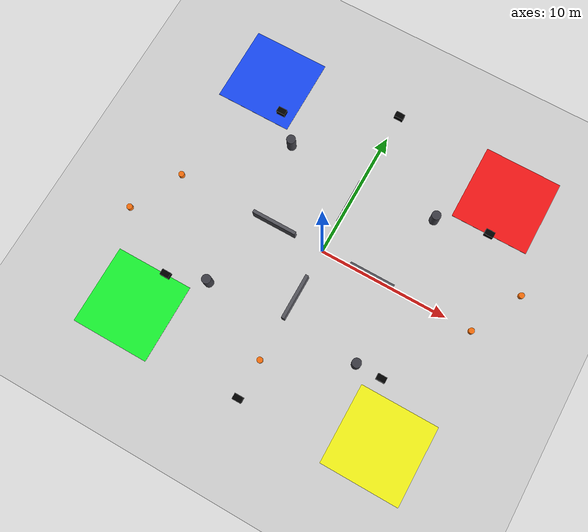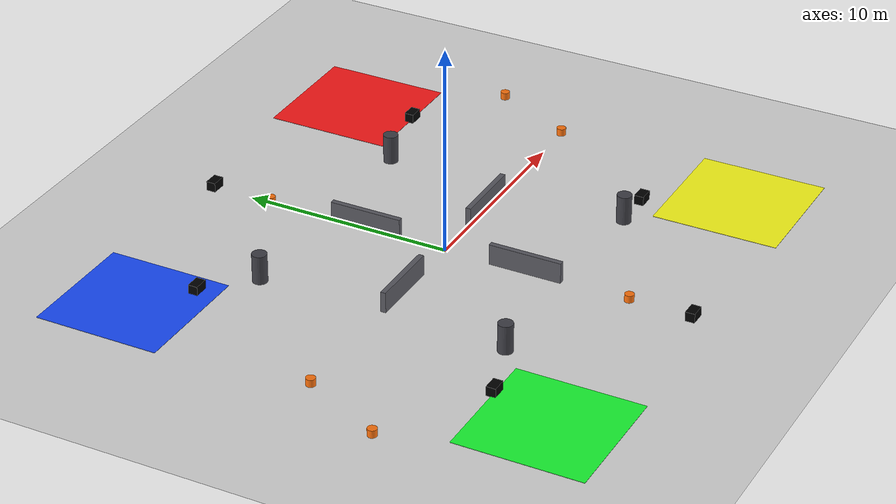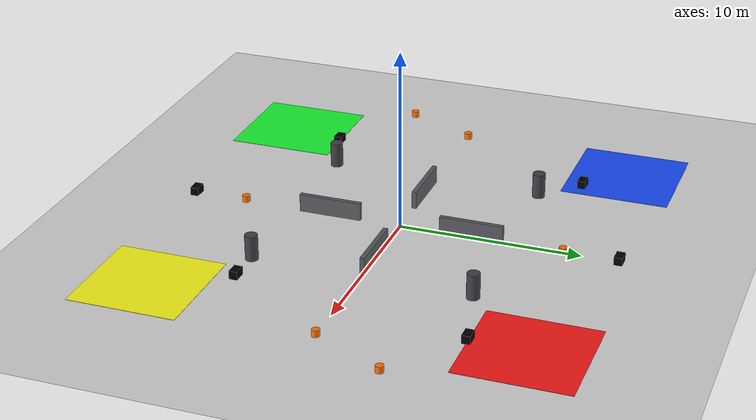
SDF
<?xml version='1.0' encoding='utf-8'?>
<sdf version="1.7">
  <world name="world_big_demo">

  <scene>
    <ambient>0.8 0.8 0.8 1</ambient>
    <background>0.95 0.95 0.98 1</background>
  </scene>

  <light name="sun_like" type="directional">
    <pose>0 0 10 0 0 0</pose>
    <diffuse>1 1 1 1</diffuse>
    <specular>0.2 0.2 0.2 1</specular>
    <direction>-0.5 0.2 -1</direction>
    <cast_shadows>true</cast_shadows>
  </light>

  <model name="ground">
    <static>true</static>
    <pose>0 0 0 0 0 0</pose>
    <link name="ground_link">
      <collision name="ground_collision">
        <geometry>
          <plane>
            <normal>0 0 1</normal>
            <size>50.0 50.0</size>
          </plane>
        </geometry>
      </collision>
      <visual name="ground_visual">
        <geometry>
          <plane>
            <normal>0 0 1</normal>
            <size>50.0 50.0</size>
          </plane>
        </geometry>
        <material>
          <ambient>0.85 0.85 0.85 1</ambient>
          <diffuse>0.85 0.85 0.85 1</diffuse>
          <specular>0.05 0.05 0.05 1</specular>
        </material>
      </visual>
    </link>
  </model>

    <model name="zone_red">
      <static>true</static>
      <pose>10 10 0.01 0 0 0</pose>
      <link name="zone_red_link">
        <visual name="zone_red_visual">
          <geometry><box><size>6.0 6.0 0.02</size></box></geometry>

          <material>
            <ambient>1.0 0.1 0.1 1.0</ambient>
            <diffuse>1.0 0.1 0.1 1.0</diffuse>
            <specular>0.05 0.05 0.05 1</specular>
            <emissive>0.2 0.020000000000000004 0.020000000000000004 1</emissive>
          </material>
        </visual>
      </link>
    </model>
    <model name="zone_blue">
      <static>true</static>
      <pose>-10 10 0.01 0 0 0</pose>
      <link name="zone_blue_link">
        <visual name="zone_blue_visual">
          <geometry><box><size>6.0 6.0 0.02</size></box></geometry>

          <material>
            <ambient>0.1 0.3 1.0 1.0</ambient>
            <diffuse>0.1 0.3 1.0 1.0</diffuse>
            <specular>0.05 0.05 0.05 1</specular>
            <emissive>0.020000000000000004 0.06 0.2 1</emissive>
          </material>
        </visual>
      </link>
    </model>
    <model name="zone_green">
      <static>true</static>
      <pose>-10 -10 0.01 0 0 0</pose>
      <link name="zone_green_link">
        <visual name="zone_green_visual">
          <geometry><box><size>6.0 6.0 0.02</size></box></geometry>

          <material>
            <ambient>0.1 1.0 0.2 1.0</ambient>
            <diffuse>0.1 1.0 0.2 1.0</diffuse>
            <specular>0.05 0.05 0.05 1</specular>
            <emissive>0.020000000000000004 0.2 0.04000000000000001 1</emissive>
          </material>
        </visual>
      </link>
    </model>
    <model name="zone_yellow">
      <static>true</static>
      <pose>10 -10 0.01 0 0 0</pose>
      <link name="zone_yellow_link">
        <visual name="zone_yellow_visual">
          <geometry><box><size>6.0 6.0 0.02</size></box></geometry>

          <material>
            <ambient>1.0 1.0 0.1 1.0</ambient>
            <diffuse>1.0 1.0 0.1 1.0</diffuse>
            <specular>0.05 0.05 0.05 1</specular>
            <emissive>0.2 0.2 0.020000000000000004 1</emissive>
          </material>
        </visual>
      </link>
    </model>
    <model name="wall_1">
      <static>true</static>
      <pose>4.0 0.0 0.5 0 0 0</pose>
      <link name="wall_1_link">
      <collision name="wall_1_collision">
        <geometry><box><size>3.5 0.25 1.0</size></box></geometry>
      </collision>
        <visual name="wall_1_visual">
          <geometry><box><size>3.5 0.25 1.0</size></box></geometry>

          <material>
            <ambient>0.35 0.35 0.38 1.0</ambient>
            <diffuse>0.35 0.35 0.38 1.0</diffuse>
            <specular>0.05 0.05 0.05 1</specular>
            <emissive>0.06999999999999999 0.06999999999999999 0.07600000000000001 1</emissive>
          </material>
        </visual>
      </link>
    </model>
    <model name="wall_2">
      <static>true</static>
      <pose>-4.0 0.0 0.5 0 0 0</pose>
      <link name="wall_2_link">
      <collision name="wall_2_collision">
        <geometry><box><size>3.5 0.25 1.0</size></box></geometry>
      </collision>
        <visual name="wall_2_visual">
          <geometry><box><size>3.5 0.25 1.0</size></box></geometry>

          <material>
            <ambient>0.35 0.35 0.38 1.0</ambient>
            <diffuse>0.35 0.35 0.38 1.0</diffuse>
            <specular>0.05 0.05 0.05 1</specular>
            <emissive>0.06999999999999999 0.06999999999999999 0.07600000000000001 1</emissive>
          </material>
        </visual>
      </link>
    </model>
    <model name="wall_3">
      <static>true</static>
      <pose>0.0 4.0 0.5 0 0 0</pose>
      <link name="wall_3_link">
      <collision name="wall_3_collision">
        <geometry><box><size>0.25 3.5 1.0</size></box></geometry>
      </collision>
        <visual name="wall_3_visual">
          <geometry><box><size>0.25 3.5 1.0</size></box></geometry>

          <material>
            <ambient>0.35 0.35 0.38 1.0</ambient>
            <diffuse>0.35 0.35 0.38 1.0</diffuse>
            <specular>0.05 0.05 0.05 1</specular>
            <emissive>0.06999999999999999 0.06999999999999999 0.07600000000000001 1</emissive>
          </material>
        </visual>
      </link>
    </model>
    <model name="wall_4">
      <static>true</static>
      <pose>0.0 -4.0 0.5 0 0 0</pose>
      <link name="wall_4_link">
      <collision name="wall_4_collision">
        <geometry><box><size>0.25 3.5 1.0</size></box></geometry>
      </collision>
        <visual name="wall_4_visual">
          <geometry><box><size>0.25 3.5 1.0</size></box></geometry>

          <material>
            <ambient>0.35 0.35 0.38 1.0</ambient>
            <diffuse>0.35 0.35 0.38 1.0</diffuse>
            <specular>0.05 0.05 0.05 1</specular>
            <emissive>0.06999999999999999 0.06999999999999999 0.07600000000000001 1</emissive>
          </material>
        </visual>
      </link>
    </model>
    <model name="pillar_1">
      <static>true</static>
      <pose>6.0 6.0 0.7 0 0 0</pose>
      <link name="pillar_1_link">
        <collision name="pillar_1_collision">
          <geometry><cylinder><radius>0.35</radius><length>1.4</length></cylinder></geometry>
        </collision>
        <visual name="pillar_1_visual">
          <geometry><cylinder><radius>0.35</radius><length>1.4</length></cylinder></geometry>

          <material>
            <ambient>0.25 0.25 0.28 1.0</ambient>
            <diffuse>0.25 0.25 0.28 1.0</diffuse>
            <specular>0.05 0.05 0.05 1</specular>
            <emissive>0.05 0.05 0.05600000000000001 1</emissive>
          </material>
        </visual>
      </link>
    </model>
    <model name="pillar_2">
      <static>true</static>
      <pose>-6.0 6.0 0.7 0 0 0</pose>
      <link name="pillar_2_link">
        <collision name="pillar_2_collision">
          <geometry><cylinder><radius>0.35</radius><length>1.4</length></cylinder></geometry>
        </collision>
        <visual name="pillar_2_visual">
          <geometry><cylinder><radius>0.35</radius><length>1.4</length></cylinder></geometry>

          <material>
            <ambient>0.25 0.25 0.28 1.0</ambient>
            <diffuse>0.25 0.25 0.28 1.0</diffuse>
            <specular>0.05 0.05 0.05 1</specular>
            <emissive>0.05 0.05 0.05600000000000001 1</emissive>
          </material>
        </visual>
      </link>
    </model>
    <model name="pillar_3">
      <static>true</static>
      <pose>6.0 -6.0 0.7 0 0 0</pose>
      <link name="pillar_3_link">
        <collision name="pillar_3_collision">
          <geometry><cylinder><radius>0.35</radius><length>1.4</length></cylinder></geometry>
        </collision>
        <visual name="pillar_3_visual">
          <geometry><cylinder><radius>0.35</radius><length>1.4</length></cylinder></geometry>

          <material>
            <ambient>0.25 0.25 0.28 1.0</ambient>
            <diffuse>0.25 0.25 0.28 1.0</diffuse>
            <specular>0.05 0.05 0.05 1</specular>
            <emissive>0.05 0.05 0.05600000000000001 1</emissive>
          </material>
        </visual>
      </link>
    </model>
    <model name="pillar_4">
      <static>true</static>
      <pose>-6.0 -6.0 0.7 0 0 0</pose>
      <link name="pillar_4_link">
        <collision name="pillar_4_collision">
          <geometry><cylinder><radius>0.35</radius><length>1.4</length></cylinder></geometry>
        </collision>
        <visual name="pillar_4_visual">
          <geometry><cylinder><radius>0.35</radius><length>1.4</length></cylinder></geometry>

          <material>
            <ambient>0.25 0.25 0.28 1.0</ambient>
            <diffuse>0.25 0.25 0.28 1.0</diffuse>
            <specular>0.05 0.05 0.05 1</specular>
            <emissive>0.05 0.05 0.05600000000000001 1</emissive>
          </material>
        </visual>
      </link>
    </model>
    <model name="cone_1">
      <static>true</static>
      <pose>12.0 0.0 0.18 0 0 0</pose>
      <link name="cone_1_link">
        <collision name="cone_1_collision">
          <geometry>
  <cylinder>
    <radius>0.22</radius>
    <length>0.36</length>
  </cylinder>
</geometry>
        </collision>
        <visual name="cone_1_visual">
          <geometry>
  <cylinder>
    <radius>0.22</radius>
    <length>0.36</length>
  </cylinder>
</geometry>

          <material>
            <ambient>1.0 0.45 0.05 1.0</ambient>
            <diffuse>1.0 0.45 0.05 1.0</diffuse>
            <specular>0.05 0.05 0.05 1</specular>
            <emissive>0.2 0.09000000000000001 0.010000000000000002 1</emissive>
          </material>
        </visual>
      </link>
    </model>
    <model name="cone_2">
      <static>true</static>
      <pose>-12.0 0.0 0.18 0 0 0</pose>
      <link name="cone_2_link">
        <collision name="cone_2_collision">
          <geometry>
  <cylinder>
    <radius>0.22</radius>
    <length>0.36</length>
  </cylinder>
</geometry>
        </collision>
        <visual name="cone_2_visual">
          <geometry>
  <cylinder>
    <radius>0.22</radius>
    <length>0.36</length>
  </cylinder>
</geometry>

          <material>
            <ambient>1.0 0.45 0.05 1.0</ambient>
            <diffuse>1.0 0.45 0.05 1.0</diffuse>
            <specular>0.05 0.05 0.05 1</specular>
            <emissive>0.2 0.09000000000000001 0.010000000000000002 1</emissive>
          </material>
        </visual>
      </link>
    </model>
    <model name="cone_3">
      <static>true</static>
      <pose>0.0 9.0 0.18 0 0 0</pose>
      <link name="cone_3_link">
        <collision name="cone_3_collision">
          <geometry>
  <cylinder>
    <radius>0.22</radius>
    <length>0.36</length>
  </cylinder>
</geometry>
        </collision>
        <visual name="cone_3_visual">
          <geometry>
  <cylinder>
    <radius>0.22</radius>
    <length>0.36</length>
  </cylinder>
</geometry>

          <material>
            <ambient>1.0 0.45 0.05 1.0</ambient>
            <diffuse>1.0 0.45 0.05 1.0</diffuse>
            <specular>0.05 0.05 0.05 1</specular>
            <emissive>0.2 0.09000000000000001 0.010000000000000002 1</emissive>
          </material>
        </visual>
      </link>
    </model>
    <model name="cone_4">
      <static>true</static>
      <pose>0.0 -9.0 0.18 0 0 0</pose>
      <link name="cone_4_link">
        <collision name="cone_4_collision">
          <geometry>
  <cylinder>
    <radius>0.22</radius>
    <length>0.36</length>
  </cylinder>
</geometry>
        </collision>
        <visual name="cone_4_visual">
          <geometry>
  <cylinder>
    <radius>0.22</radius>
    <length>0.36</length>
  </cylinder>
</geometry>

          <material>
            <ambient>1.0 0.45 0.05 1.0</ambient>
            <diffuse>1.0 0.45 0.05 1.0</diffuse>
            <specular>0.05 0.05 0.05 1</specular>
            <emissive>0.2 0.09000000000000001 0.010000000000000002 1</emissive>
          </material>
        </visual>
      </link>
    </model>
    <model name="cone_5">
      <static>true</static>
      <pose>14.0 4.0 0.18 0 0 0</pose>
      <link name="cone_5_link">
        <collision name="cone_5_collision">
          <geometry>
  <cylinder>
    <radius>0.22</radius>
    <length>0.36</length>
  </cylinder>
</geometry>
        </collision>
        <visual name="cone_5_visual">
          <geometry>
  <cylinder>
    <radius>0.22</radius>
    <length>0.36</length>
  </cylinder>
</geometry>

          <material>
            <ambient>1.0 0.45 0.05 1.0</ambient>
            <diffuse>1.0 0.45 0.05 1.0</diffuse>
            <specular>0.05 0.05 0.05 1</specular>
            <emissive>0.2 0.09000000000000001 0.010000000000000002 1</emissive>
          </material>
        </visual>
      </link>
    </model>
    <model name="cone_6">
      <static>true</static>
      <pose>-14.0 -4.0 0.18 0 0 0</pose>
      <link name="cone_6_link">
        <collision name="cone_6_collision">
          <geometry>
  <cylinder>
    <radius>0.22</radius>
    <length>0.36</length>
  </cylinder>
</geometry>
        </collision>
        <visual name="cone_6_visual">
          <geometry>
  <cylinder>
    <radius>0.22</radius>
    <length>0.36</length>
  </cylinder>
</geometry>

          <material>
            <ambient>1.0 0.45 0.05 1.0</ambient>
            <diffuse>1.0 0.45 0.05 1.0</diffuse>
            <specular>0.05 0.05 0.05 1</specular>
            <emissive>0.2 0.09000000000000001 0.010000000000000002 1</emissive>
          </material>
        </visual>
      </link>
    </model>
    <model name="object1">
      <static>true</static>
      <pose>8.0 -6.0 0.225 0 0 0</pose>
      <link name="object1_link">
      <collision name="object1_collision">
        <geometry><box><size>0.7 0.45 0.45</size></box></geometry>
      </collision>
        <visual name="object1_visual">
          <geometry><box><size>0.7 0.45 0.45</size></box></geometry>

          <material>
            <ambient>0.0 0.0 0.0 1.0</ambient>
            <diffuse>0.0 0.0 0.0 1.0</diffuse>
            <specular>0.05 0.05 0.05 1</specular>
            <emissive>0.0 0.0 0.0 1</emissive>
          </material>
        </visual>
      </link>
    </model>
    <model name="object2">
      <static>true</static>
      <pose>-9.0 -7.0 0.225 0 0 0</pose>
      <link name="object2_link">
      <collision name="object2_collision">
        <geometry><box><size>0.7 0.45 0.45</size></box></geometry>
      </collision>
        <visual name="object2_visual">
          <geometry><box><size>0.7 0.45 0.45</size></box></geometry>

          <material>
            <ambient>0.0 0.0 0.0 1.0</ambient>
            <diffuse>0.0 0.0 0.0 1.0</diffuse>
            <specular>0.05 0.05 0.05 1</specular>
            <emissive>0.0 0.0 0.0 1</emissive>
          </material>
        </visual>
      </link>
    </model>
    <model name="object3">
      <static>true</static>
      <pose>10.0 7.0 0.225 0 0 0</pose>
      <link name="object3_link">
      <collision name="object3_collision">
        <geometry><box><size>0.7 0.45 0.45</size></box></geometry>
      </collision>
        <visual name="object3_visual">
          <geometry><box><size>0.7 0.45 0.45</size></box></geometry>

          <material>
            <ambient>0.0 0.0 0.0 1.0</ambient>
            <diffuse>0.0 0.0 0.0 1.0</diffuse>
            <specular>0.05 0.05 0.05 1</specular>
            <emissive>0.0 0.0 0.0 1</emissive>
          </material>
        </visual>
      </link>
    </model>
    <model name="object4">
      <static>true</static>
      <pose>-8.0 8.0 0.225 0 0 0</pose>
      <link name="object4_link">
      <collision name="object4_collision">
        <geometry><box><size>0.7 0.45 0.45</size></box></geometry>
      </collision>
        <visual name="object4_visual">
          <geometry><box><size>0.7 0.45 0.45</size></box></geometry>

          <material>
            <ambient>0.0 0.0 0.0 1.0</ambient>
            <diffuse>0.0 0.0 0.0 1.0</diffuse>
            <specular>0.05 0.05 0.05 1</specular>
            <emissive>0.0 0.0 0.0 1</emissive>
          </material>
        </visual>
      </link>
    </model>
    <model name="object5">
      <static>true</static>
      <pose>0.0 -12.0 0.225 0 0 0</pose>
      <link name="object5_link">
      <collision name="object5_collision">
        <geometry><box><size>0.7 0.45 0.45</size></box></geometry>
      </collision>
        <visual name="object5_visual">
          <geometry><box><size>0.7 0.45 0.45</size></box></geometry>

          <material>
            <ambient>0.0 0.0 0.0 1.0</ambient>
            <diffuse>0.0 0.0 0.0 1.0</diffuse>
            <specular>0.05 0.05 0.05 1</specular>
            <emissive>0.0 0.0 0.0 1</emissive>
          </material>
        </visual>
      </link>
    </model>
    <model name="object6">
      <static>true</static>
      <pose>0.0 12.0 0.225 0 0 0</pose>
      <link name="object6_link">
      <collision name="object6_collision">
        <geometry><box><size>0.7 0.45 0.45</size></box></geometry>
      </collision>
        <visual name="object6_visual">
          <geometry><box><size>0.7 0.45 0.45</size></box></geometry>

          <material>
            <ambient>0.0 0.0 0.0 1.0</ambient>
            <diffuse>0.0 0.0 0.0 1.0</diffuse>
            <specular>0.05 0.05 0.05 1</specular>
            <emissive>0.0 0.0 0.0 1</emissive>
          </material>
        </visual>
      </link>
    </model>
  </world>
</sdf>
